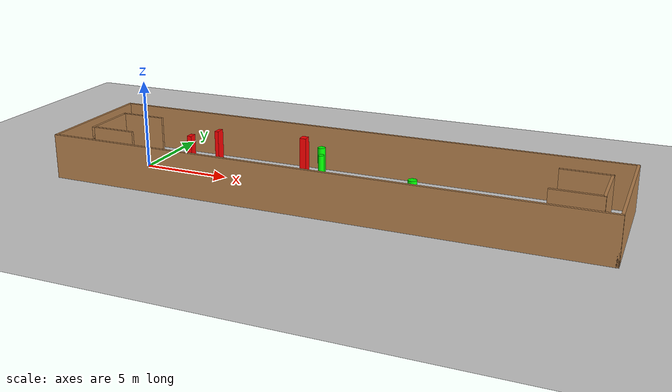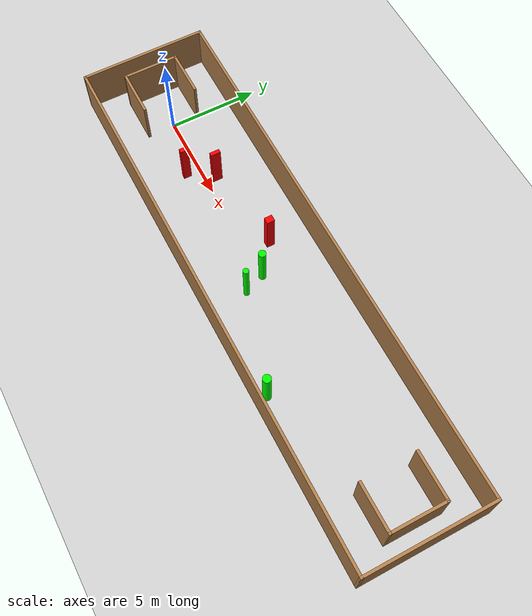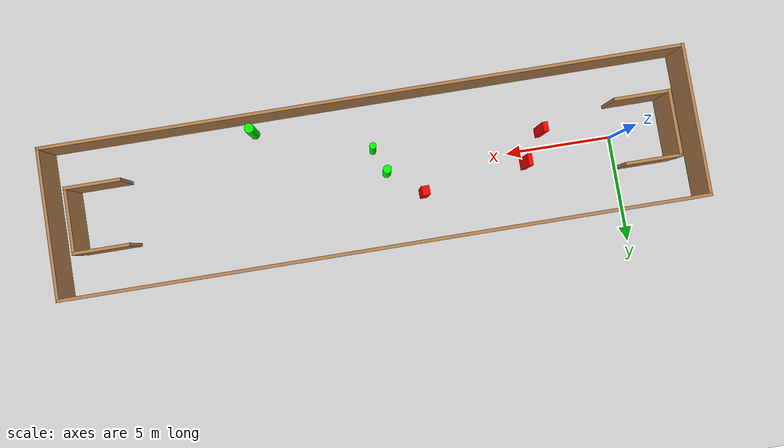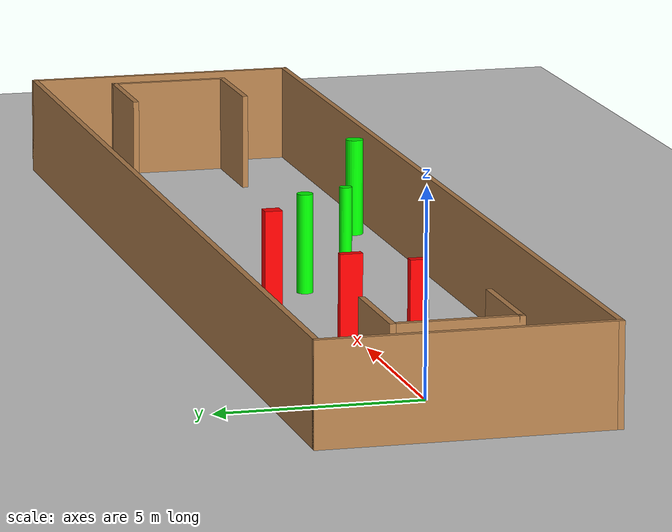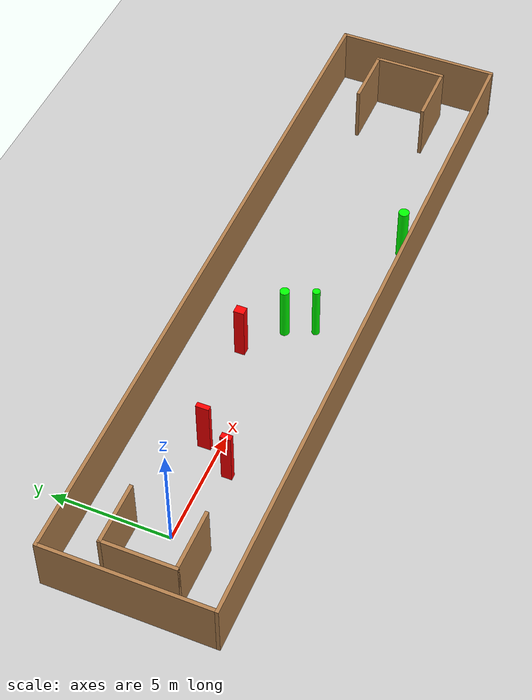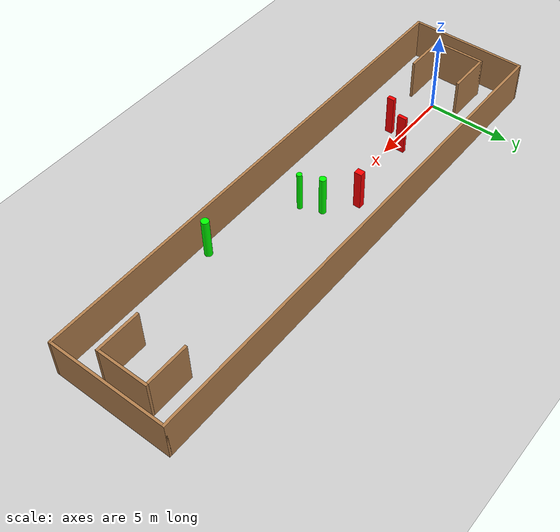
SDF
<sdf version="1.7">
 <world name="default">
  <light name="sun" type="directional">
   <pose>0 0 10 0 -0 0</pose>
   <diffuse>0.8 0.8 0.8 1</diffuse>
   <specular>0.2 0.2 0.2 1</specular>
   <attenuation>
    <range>1000</range>
    <constant>0.9</constant>
    <linear>0.01</linear>
    <quadratic>0.001</quadratic>
   </attenuation>
   <direction>-0.5 0.1 -0.9</direction>
   <spot><inner_angle>0</inner_angle><outer_angle>0</outer_angle><falloff>0</falloff></spot>
  </light>
  <model name="ground_plane">
   <static>1</static>
   <link name="link">
    <collision name="collision">
     <geometry><plane><normal>0 0 1</normal><size>100 100</size></plane></geometry>
     <surface>
      <contact><collide_bitmask>65535</collide_bitmask></contact>
      <friction><ode><mu>100</mu><mu2>50</mu2></ode></friction>
     </surface>
    </collision>
    <visual name="visual">
     <cast_shadows>0</cast_shadows>
     <geometry><plane><normal>0 0 1</normal><size>100 100</size></plane></geometry>
     <material>
      <script><uri>file://media/materials/scripts/gazebo.material</uri><name>Gazebo/Grey</name></script>
     </material>
    </visual>
   </link>
  </model>
  <gravity>0 0 -9.8</gravity>
  <magnetic_field>6e-06 2.3e-05 -4.2e-05</magnetic_field>
  <atmosphere type="adiabatic"/>
  <physics type="ode">
   <max_step_size>0.001</max_step_size>
   <real_time_factor>1</real_time_factor>
   <real_time_update_rate>1000</real_time_update_rate>
  </physics>
  <scene><ambient>0.4 0.4 0.4 1</ambient><background>0.7 0.7 0.7 1</background><shadows>1</shadows></scene>
  <spherical_coordinates>
   <surface_model>EARTH_WGS84</surface_model>
   <latitude_deg>0</latitude_deg>
   <longitude_deg>0</longitude_deg>
   <elevation>0</elevation>
   <heading_deg>0</heading_deg>
  </spherical_coordinates>
  <model name="my_base_walls">
   <link name="Wall_0">
    <collision name="Wall_0_Collision">
     <geometry><box><size>7.15 0.15 2.5</size></box></geometry>
     <pose>0 0 1.25 0 -0 0</pose>
    </collision>
    <visual name="Wall_0_Visual">
     <pose>0 0 1.25 0 -0 0</pose>
     <geometry><box><size>7.15 0.15 2.5</size></box></geometry>
     <material>
      <script><uri>file://media/materials/scripts/gazebo.material</uri><name>Gazebo/Wood</name></script>
      <ambient>1 1 1 1</ambient>
     </material>
     <meta><layer>0</layer></meta>
    </visual>
    <pose>-15 0 0 0 -0 1.5708</pose>
   </link>
   <link name="Wall_10">
    <collision name="Wall_10_Collision">
     <geometry><box><size>2.65 0.15 2.5</size></box></geometry>
     <pose>0 0 1.25 0 -0 0</pose>
    </collision>
    <visual name="Wall_10_Visual">
     <pose>0 0 1.25 0 -0 0</pose>
     <geometry><box><size>2.65 0.15 2.5</size></box></geometry>
     <material>
      <script><uri>file://media/materials/scripts/gazebo.material</uri><name>Gazebo/Wood</name></script>
      <ambient>1 1 1 1</ambient>
     </material>
     <meta><layer>0</layer></meta>
    </visual>
    <pose>-12.75 -1.5 0 0 -0 0</pose>
   </link>
   <link name="Wall_12">
    <collision name="Wall_12_Collision">
     <geometry><box><size>2.65 0.15 2.5</size></box></geometry>
     <pose>0 0 1.25 0 -0 0</pose>
    </collision>
    <visual name="Wall_12_Visual">
     <pose>0 0 1.25 0 -0 0</pose>
     <geometry><box><size>2.65 0.15 2.5</size></box></geometry>
     <material>
      <script><uri>file://media/materials/scripts/gazebo.material</uri><name>Gazebo/Wood</name></script>
      <ambient>1 1 1 1</ambient>
     </material>
     <meta><layer>0</layer></meta>
    </visual>
    <pose>-12.75 1.5 0 0 -0 0</pose>
   </link>
   <link name="Wall_14">
    <collision name="Wall_14_Collision">
     <geometry><box><size>3.15 0.15 2.5</size></box></geometry>
     <pose>0 0 1.25 0 -0 0</pose>
    </collision>
    <visual name="Wall_14_Visual">
     <pose>0 0 1.25 0 -0 0</pose>
     <geometry><box><size>3.15 0.15 2.5</size></box></geometry>
     <material>
      <script><uri>file://media/materials/scripts/gazebo.material</uri><name>Gazebo/Wood</name></script>
      <ambient>1 1 1 1</ambient>
     </material>
     <meta><layer>0</layer></meta>
    </visual>
    <pose>14 0 0 0 -0 -1.5708</pose>
   </link>
   <link name="Wall_15">
    <collision name="Wall_15_Collision">
     <geometry><box><size>2.65 0.15 2.5</size></box></geometry>
     <pose>0 0 1.25 0 -0 0</pose>
    </collision>
    <visual name="Wall_15_Visual">
     <pose>0 0 1.25 0 -0 0</pose>
     <geometry><box><size>2.65 0.15 2.5</size></box></geometry>
     <material>
      <script><uri>file://media/materials/scripts/gazebo.material</uri><name>Gazebo/Wood</name></script>
      <ambient>1 1 1 1</ambient>
     </material>
     <meta><layer>0</layer></meta>
    </visual>
    <pose>12.75 -1.5 0 0 -0 3.14159</pose>
   </link>
   <link name="Wall_17">
    <collision name="Wall_17_Collision">
     <geometry><box><size>2.65 0.15 2.5</size></box></geometry>
     <pose>0 0 1.25 0 -0 0</pose>
    </collision>
    <visual name="Wall_17_Visual">
     <pose>0 0 1.25 0 -0 0</pose>
     <geometry><box><size>2.65 0.15 2.5</size></box></geometry>
     <material>
      <script><uri>file://media/materials/scripts/gazebo.material</uri><name>Gazebo/Wood</name></script>
      <ambient>1 1 1 1</ambient>
     </material>
     <meta><layer>0</layer></meta>
    </visual>
    <pose>12.75 1.5 0 0 -0 3.14159</pose>
   </link>
   <link name="Wall_2">
    <collision name="Wall_2_Collision">
     <geometry><box><size>30.15 0.15 2.5</size></box></geometry>
     <pose>0 0 1.25 0 -0 0</pose>
    </collision>
    <visual name="Wall_2_Visual">
     <pose>0 0 1.25 0 -0 0</pose>
     <geometry><box><size>30.15 0.15 2.5</size></box></geometry>
     <material>
      <script><uri>file://media/materials/scripts/gazebo.material</uri><name>Gazebo/Wood</name></script>
      <ambient>1 1 1 1</ambient>
     </material>
     <meta><layer>0</layer></meta>
    </visual>
    <pose>-0 -3.5 0 0 -0 0</pose>
   </link>
   <link name="Wall_4">
    <collision name="Wall_4_Collision">
     <geometry><box><size>30.15 0.15 2.5</size></box></geometry>
     <pose>0 0 1.25 0 -0 0</pose>
    </collision>
    <visual name="Wall_4_Visual">
     <pose>0 0 1.25 0 -0 0</pose>
     <geometry><box><size>30.15 0.15 2.5</size></box></geometry>
     <material>
      <script><uri>file://media/materials/scripts/gazebo.material</uri><name>Gazebo/Wood</name></script>
      <ambient>1 1 1 1</ambient>
     </material>
     <meta><layer>0</layer></meta>
    </visual>
    <pose>-0 3.5 0 0 -0 0</pose>
   </link>
   <link name="Wall_6">
    <collision name="Wall_6_Collision">
     <geometry><box><size>7.15 0.15 2.5</size></box></geometry>
     <pose>0 0 1.25 0 -0 0</pose>
    </collision>
    <visual name="Wall_6_Visual">
     <pose>0 0 1.25 0 -0 0</pose>
     <geometry><box><size>7.15 0.15 2.5</size></box></geometry>
     <material>
      <script><uri>file://media/materials/scripts/gazebo.material</uri><name>Gazebo/Wood</name></script>
      <ambient>1 1 1 1</ambient>
     </material>
     <meta><layer>0</layer></meta>
    </visual>
    <pose>15 0 0 0 -0 -1.5708</pose>
   </link>
   <link name="Wall_9">
    <collision name="Wall_9_Collision">
     <geometry><box><size>3.15 0.15 2.5</size></box></geometry>
     <pose>0 0 1.25 0 -0 0</pose>
    </collision>
    <visual name="Wall_9_Visual">
     <pose>0 0 1.25 0 -0 0</pose>
     <geometry><box><size>3.15 0.15 2.5</size></box></geometry>
     <material>
      <script><uri>file://media/materials/scripts/gazebo.material</uri><name>Gazebo/Wood</name></script>
      <ambient>1 1 1 1</ambient>
     </material>
     <meta><layer>0</layer></meta>
    </visual>
    <pose>-14 0 0 0 -0 -1.5708</pose>
   </link>
   <static>1</static>
   <pose>11.5 0 0 0 -0 0</pose>
  </model>
  <model name="cylinder1">
   <static>1</static>
   <link name="link">
    <inertial>
     <mass>1</mass>
     <inertia><ixx>0.5</ixx><ixy>0</ixy><ixz>0</ixz><iyy>0.5</iyy><iyz>0</iyz><izz>1</izz></inertia>
    </inertial>
    <collision name="collision">
     <geometry><cylinder><radius>0.22522551180834102</radius><length>2.5</length></cylinder></geometry>
    </collision>
    <visual name="visual">
     <geometry><cylinder><radius>0.22522551180834102</radius><length>2.5</length></cylinder></geometry>
     <material>
      <ambient>0 1 0 1</ambient>
      <diffuse>0 1 0 1</diffuse>
      <specular>0.1 0.1 0.1 1</specular>
      <emissive>0 0 0 0</emissive>
     </material>
    </visual>
   </link>
   <pose>16.799060807812495 -2.876770094773572 1.25 0 0 0</pose>
  </model>
  <model name="cylinder2">
   <static>1</static>
   <link name="link">
    <inertial>
     <mass>1</mass>
     <inertia><ixx>0.5</ixx><ixy>0</ixy><ixz>0</ixz><iyy>0.5</iyy><iyz>0</iyz><izz>1</izz></inertia>
    </inertial>
    <collision name="collision">
     <geometry><cylinder><radius>0.1581849296511179</radius><length>2.5</length></cylinder></geometry>
    </collision>
    <visual name="visual">
     <geometry><cylinder><radius>0.1581849296511179</radius><length>2.5</length></cylinder></geometry>
     <material>
      <ambient>0 1 0 1</ambient>
      <diffuse>0 1 0 1</diffuse>
      <specular>0.1 0.1 0.1 1</specular>
      <emissive>0 0 0 0</emissive>
     </material>
    </visual>
   </link>
   <pose>11.334413971201467 -1.1670059737632341 1.25 0 0 0</pose>
  </model>
  <model name="cylinder3">
   <static>1</static>
   <link name="link">
    <inertial>
     <mass>1</mass>
     <inertia><ixx>0.5</ixx><ixy>0</ixy><ixz>0</ixz><iyy>0.5</iyy><iyz>0</iyz><izz>1</izz></inertia>
    </inertial>
    <collision name="collision">
     <geometry><cylinder><radius>0.20191100201096335</radius><length>2.5</length></cylinder></geometry>
    </collision>
    <visual name="visual">
     <geometry><cylinder><radius>0.20191100201096335</radius><length>2.5</length></cylinder></geometry>
     <material>
      <ambient>0 1 0 1</ambient>
      <diffuse>0 1 0 1</diffuse>
      <specular>0.1 0.1 0.1 1</specular>
      <emissive>0 0 0 0</emissive>
     </material>
    </visual>
   </link>
   <pose>10.850908800678065 0.0008403914570265236 1.25 0 0 0</pose>
  </model>
  <model name="box1">
   <static>1</static>
   <link name="link">
    <inertial>
     <mass>1</mass>
     <inertia><ixx>0.083</ixx><ixy>0</ixy><ixz>0</ixz><iyy>0.083</iyy><iyz>0</iyz><izz>0.083</izz></inertia>
    </inertial>
    <collision name="collision">
     <geometry><box><size>0.3654432049341765 0.43721904132298745 2.5</size></box></geometry>
    </collision>
    <visual name="visual">
     <geometry><box><size>0.3654432049341765 0.43721904132298745 2.5</size></box></geometry>
     <material>
      <ambient>1 0 0 1</ambient>
      <diffuse>1 0 0 1</diffuse>
      <specular>0.1 0.1 0.1 1</specular>
      <emissive>0 0 0 0</emissive>
     </material>
    </visual>
    <sensor name="my_contact" type="contact">
     <contact><collision>box_collision</collision><topic>__default_topic__</topic></contact>
    </sensor>
   </link>
   <pose>9.277365384677585 1.2385604978647962 1.25 0 0 0</pose>
  </model>
  <model name="box2">
   <static>1</static>
   <link name="link">
    <inertial>
     <mass>1</mass>
     <inertia><ixx>0.083</ixx><ixy>0</ixy><ixz>0</ixz><iyy>0.083</iyy><iyz>0</iyz><izz>0.083</izz></inertia>
    </inertial>
    <collision name="collision">
     <geometry><box><size>0.21105954270031113 0.5485324059333121 2.5</size></box></geometry>
    </collision>
    <visual name="visual">
     <geometry><box><size>0.21105954270031113 0.5485324059333121 2.5</size></box></geometry>
     <material>
      <ambient>1 0 0 1</ambient>
      <diffuse>1 0 0 1</diffuse>
      <specular>0.1 0.1 0.1 1</specular>
      <emissive>0 0 0 0</emissive>
     </material>
    </visual>
    <sensor name="my_contact" type="contact">
     <contact><collision>box_collision</collision><topic>__default_topic__</topic></contact>
    </sensor>
   </link>
   <pose>4.339514788206996 0.6030040341099925 1.25 0 0 0</pose>
  </model>
  <model name="box3">
   <static>1</static>
   <link name="link">
    <inertial>
     <mass>1</mass>
     <inertia><ixx>0.083</ixx><ixy>0</ixy><ixz>0</ixz><iyy>0.083</iyy><iyz>0</iyz><izz>0.083</izz></inertia>
    </inertial>
    <collision name="collision">
     <geometry><box><size>0.24470244568324828 0.4413878320550343 2.5</size></box></geometry>
    </collision>
    <visual name="visual">
     <geometry><box><size>0.24470244568324828 0.4413878320550343 2.5</size></box></geometry>
     <material>
      <ambient>1 0 0 1</ambient>
      <diffuse>1 0 0 1</diffuse>
      <specular>0.1 0.1 0.1 1</specular>
      <emissive>0 0 0 0</emissive>
     </material>
    </visual>
    <sensor name="my_contact" type="contact">
     <contact><collision>box_collision</collision><topic>__default_topic__</topic></contact>
    </sensor>
   </link>
   <pose>3.3885005173863583 -0.7742699204362191 1.25 0 0 0</pose>
  </model>
 </world>
</sdf>
